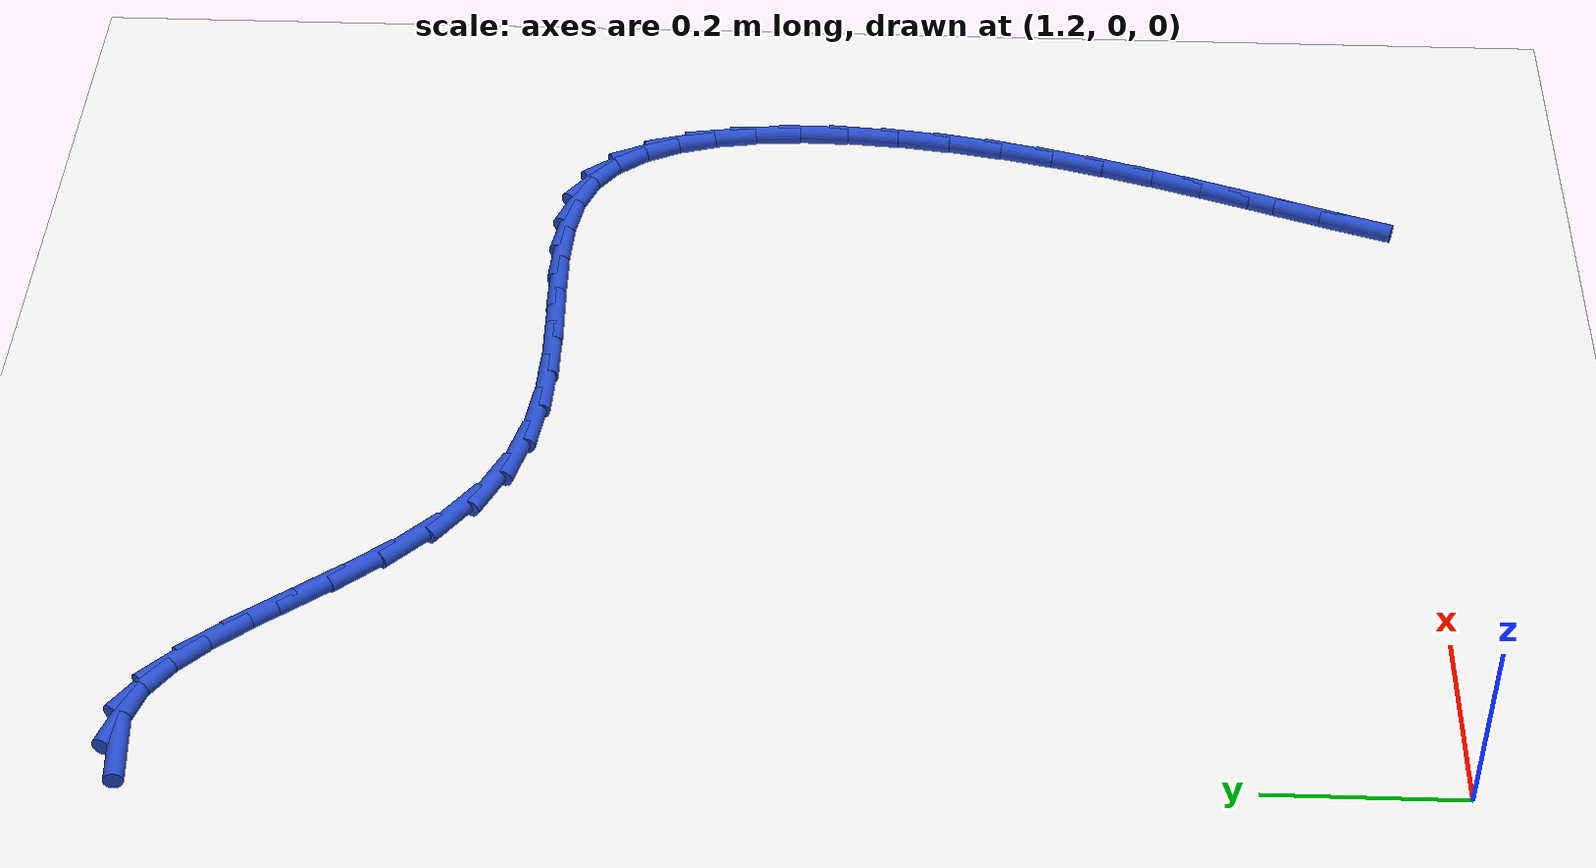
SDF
<sdf version="1.6">
 <world name="default">
  <model name="ground_plane">
   <static>1</static>
   <link name="link">
    <collision name="collision">
     <geometry><plane><normal>0 0 1</normal><size>100 100</size></plane></geometry>
     <surface><friction><ode><mu>100</mu><mu2>50</mu2></ode></friction></surface>
    </collision>
    <visual name="visual">
     <cast_shadows>0</cast_shadows>
     <geometry><plane><normal>0 0 1</normal><size>100 100</size></plane></geometry>
     <material>
      <script><uri>file://media/materials/scripts/gazebo.material</uri><name>Gazebo/WhiteGlow</name></script>
     </material>
    </visual>
   </link>
  </model>
  <model name="line">
   <link name="link_38">
    <pose>1.207631395489441 1.2788626270640902 0.01 0 1.57 0.08881564727308935</pose>
    <collision name="collision">
     <geometry><cylinder><radius>0.01</radius><length>0.08</length></cylinder></geometry>
    </collision>
    <visual name="visual">
     <material>
      <script><name>Gazebo/Blue</name><uri>file://media/materials/scripts/gazebo.material</uri></script>
     </material>
     <geometry><cylinder><radius>0.01</radius><length>0.08</length></cylinder></geometry>
    </visual>
   </link>
   <link name="link_39">
    <pose>1.2477009795915115 1.2824308202798063 0.01 0 1.57 -0.31008215336885275</pose>
    <collision name="collision">
     <geometry><cylinder><radius>0.01</radius><length>0.08</length></cylinder></geometry>
    </collision>
    <visual name="visual">
     <material>
      <script><name>Gazebo/Blue</name><uri>file://media/materials/scripts/gazebo.material</uri></script>
     </material>
     <geometry><cylinder><radius>0.01</radius><length>0.08</length></cylinder></geometry>
    </visual>
   </link>
   <link name="link_40">
    <pose>1.285117404471107 1.2704419208641466 0.01 0 1.57 -0.6065291499646555</pose>
    <collision name="collision">
     <geometry><cylinder><radius>0.01</radius><length>0.08</length></cylinder></geometry>
    </collision>
    <visual name="visual">
     <material>
      <script><name>Gazebo/Blue</name><uri>file://media/materials/scripts/gazebo.material</uri></script>
     </material>
     <geometry><cylinder><radius>0.01</radius><length>0.08</length></cylinder></geometry>
    </visual>
   </link>
   <link name="link_41">
    <pose>1.3206453921466081 1.2457938455416242 0.01 0 1.57 -0.785439815209314</pose>
    <collision name="collision">
     <geometry><cylinder><radius>0.01</radius><length>0.08</length></cylinder></geometry>
    </collision>
    <visual name="visual">
     <material>
      <script><name>Gazebo/Blue</name><uri>file://media/materials/scripts/gazebo.material</uri></script>
     </material>
     <geometry><cylinder><radius>0.01</radius><length>0.08</length></cylinder></geometry>
    </visual>
   </link>
   <link name="link_42">
    <pose>1.3550499340037434 1.2113864375420977 0.01 0 1.57 -0.880983348141115</pose>
    <collision name="collision">
     <geometry><cylinder><radius>0.01</radius><length>0.08</length></cylinder></geometry>
    </collision>
    <visual name="visual">
     <material>
      <script><name>Gazebo/Blue</name><uri>file://media/materials/scripts/gazebo.material</uri></script>
     </material>
     <geometry><cylinder><radius>0.01</radius><length>0.08</length></cylinder></geometry>
    </visual>
   </link>
   <link name="link_43">
    <pose>1.3890960214282426 1.170119540095424 0.01 0 1.57 -0.9197992767301317</pose>
    <collision name="collision">
     <geometry><cylinder><radius>0.01</radius><length>0.08</length></cylinder></geometry>
    </collision>
    <visual name="visual">
     <material>
      <script><name>Gazebo/Blue</name><uri>file://media/materials/scripts/gazebo.material</uri></script>
     </material>
     <geometry><cylinder><radius>0.01</radius><length>0.08</length></cylinder></geometry>
    </visual>
   </link>
   <link name="link_44">
    <pose>1.423548645805835 1.1248929964314616 0.01 0 1.57 -0.9148391888629962</pose>
    <collision name="collision">
     <geometry><cylinder><radius>0.01</radius><length>0.08</length></cylinder></geometry>
    </collision>
    <visual name="visual">
     <material>
      <script><name>Gazebo/Blue</name><uri>file://media/materials/scripts/gazebo.material</uri></script>
     </material>
     <geometry><cylinder><radius>0.01</radius><length>0.08</length></cylinder></geometry>
    </visual>
   </link>
   <link name="link_45">
    <pose>1.4591727985222502 1.0786066497800673 0.01 0 1.57 -0.8691656797073278</pose>
    <collision name="collision">
     <geometry><cylinder><radius>0.01</radius><length>0.08</length></cylinder></geometry>
    </collision>
    <visual name="visual">
     <material>
      <script><name>Gazebo/Blue</name><uri>file://media/materials/scripts/gazebo.material</uri></script>
     </material>
     <geometry><cylinder><radius>0.01</radius><length>0.08</length></cylinder></geometry>
    </visual>
   </link>
   <link name="link_46">
    <pose>1.4967334709632174 1.0341603433711002 0.01 0 1.57 -0.7784485403927817</pose>
    <collision name="collision">
     <geometry><cylinder><radius>0.01</radius><length>0.08</length></cylinder></geometry>
    </collision>
    <visual name="visual">
     <material>
      <script><name>Gazebo/Blue</name><uri>file://media/materials/scripts/gazebo.material</uri></script>
     </material>
     <geometry><cylinder><radius>0.01</radius><length>0.08</length></cylinder></geometry>
    </visual>
   </link>
   <link name="link_47">
    <pose>1.5369956545144663 0.994453920434418 0.01 0 1.57 -0.6327338617281203</pose>
    <collision name="collision">
     <geometry><cylinder><radius>0.01</radius><length>0.08</length></cylinder></geometry>
    </collision>
    <visual name="visual">
     <material>
      <script><name>Gazebo/Blue</name><uri>file://media/materials/scripts/gazebo.material</uri></script>
     </material>
     <geometry><cylinder><radius>0.01</radius><length>0.08</length></cylinder></geometry>
    </visual>
   </link>
   <link name="link_48">
    <pose>1.5807243405617257 0.9623872241998779 0.01 0 1.57 -0.4365214389359449</pose>
    <collision name="collision">
     <geometry><cylinder><radius>0.01</radius><length>0.08</length></cylinder></geometry>
    </collision>
    <visual name="visual">
     <material>
      <script><name>Gazebo/Blue</name><uri>file://media/materials/scripts/gazebo.material</uri></script>
     </material>
     <geometry><cylinder><radius>0.01</radius><length>0.08</length></cylinder></geometry>
    </visual>
   </link>
   <link name="link_49">
    <pose>1.6284111466724007 0.9401395204610673 0.01 0 1.57 -0.25900743046637276</pose>
    <collision name="collision">
     <geometry><cylinder><radius>0.01</radius><length>0.08</length></cylinder></geometry>
    </collision>
    <visual name="visual">
     <material>
      <script><name>Gazebo/Blue</name><uri>file://media/materials/scripts/gazebo.material</uri></script>
     </material>
     <geometry><cylinder><radius>0.01</radius><length>0.08</length></cylinder></geometry>
    </visual>
   </link>
   <link name="link_50">
    <pose>1.679318868088891 0.9266510609537888 0.01 0 1.57 -0.12561458461229144</pose>
    <collision name="collision">
     <geometry><cylinder><radius>0.01</radius><length>0.08</length></cylinder></geometry>
    </collision>
    <visual name="visual">
     <material>
      <script><name>Gazebo/Blue</name><uri>file://media/materials/scripts/gazebo.material</uri></script>
     </material>
     <geometry><cylinder><radius>0.01</radius><length>0.08</length></cylinder></geometry>
    </visual>
   </link>
   <link name="link_51">
    <pose>1.732365177932654 0.919952400886823 0.01 0 1.57 -0.0347044411926686</pose>
    <collision name="collision">
     <geometry><cylinder><radius>0.01</radius><length>0.08</length></cylinder></geometry>
    </collision>
    <visual name="visual">
     <material>
      <script><name>Gazebo/Blue</name><uri>file://media/materials/scripts/gazebo.material</uri></script>
     </material>
     <geometry><cylinder><radius>0.01</radius><length>0.08</length></cylinder></geometry>
    </visual>
   </link>
   <link name="link_52">
    <pose>1.7864677312597443 0.9180740478509248 0.01 0 1.57 0.017981149726221397</pose>
    <collision name="collision">
     <geometry><cylinder><radius>0.01</radius><length>0.08</length></cylinder></geometry>
    </collision>
    <visual name="visual">
     <material>
      <script><name>Gazebo/Blue</name><uri>file://media/materials/scripts/gazebo.material</uri></script>
     </material>
     <geometry><cylinder><radius>0.01</radius><length>0.08</length></cylinder></geometry>
    </visual>
   </link>
   <link name="link_53">
    <pose>1.8405441831262175 0.9190465094368503 0.01 0 1.57 0.03498390122692101</pose>
    <collision name="collision">
     <geometry><cylinder><radius>0.01</radius><length>0.08</length></cylinder></geometry>
    </collision>
    <visual name="visual">
     <material>
      <script><name>Gazebo/Blue</name><uri>file://media/materials/scripts/gazebo.material</uri></script>
     </material>
     <geometry><cylinder><radius>0.01</radius><length>0.08</length></cylinder></geometry>
    </visual>
   </link>
   <link name="link_54">
    <pose>1.893512188588129 0.920900293235355 0.01 0 1.57 0.015076754488411427</pose>
    <collision name="collision">
     <geometry><cylinder><radius>0.01</radius><length>0.08</length></cylinder></geometry>
    </collision>
    <visual name="visual">
     <material>
      <script><name>Gazebo/Blue</name><uri>file://media/materials/scripts/gazebo.material</uri></script>
     </material>
     <geometry><cylinder><radius>0.01</radius><length>0.08</length></cylinder></geometry>
    </visual>
   </link>
   <link name="link_55">
    <pose>1.9442894027015325 0.9216659068371938 0.01 0 1.57 -0.04821213139926054</pose>
    <collision name="collision">
     <geometry><cylinder><radius>0.01</radius><length>0.08</length></cylinder></geometry>
    </collision>
    <visual name="visual">
     <material>
      <script><name>Gazebo/Blue</name><uri>file://media/materials/scripts/gazebo.material</uri></script>
     </material>
     <geometry><cylinder><radius>0.01</radius><length>0.08</length></cylinder></geometry>
    </visual>
   </link>
   <link name="link_56">
    <pose>1.9917934805224833 0.9193738578331223 0.01 0 1.57 -0.16802844585005158</pose>
    <collision name="collision">
     <geometry><cylinder><radius>0.01</radius><length>0.08</length></cylinder></geometry>
    </collision>
    <visual name="visual">
     <material>
      <script><name>Gazebo/Blue</name><uri>file://media/materials/scripts/gazebo.material</uri></script>
     </material>
     <geometry><cylinder><radius>0.01</radius><length>0.08</length></cylinder></geometry>
    </visual>
   </link>
   <link name="link_57">
    <pose>2.0349420771070372 0.9120546538138964 0.01 0 1.57 -0.36281697408463104</pose>
    <collision name="collision">
     <geometry><cylinder><radius>0.01</radius><length>0.08</length></cylinder></geometry>
    </collision>
    <visual name="visual">
     <material>
      <script><name>Gazebo/Blue</name><uri>file://media/materials/scripts/gazebo.material</uri></script>
     </material>
     <geometry><cylinder><radius>0.01</radius><length>0.08</length></cylinder></geometry>
    </visual>
   </link>
   <link name="link_58">
    <pose>2.07265284751125 0.8977388023702713 0.01 0 1.57 -0.6368235792398497</pose>
    <collision name="collision">
     <geometry><cylinder><radius>0.01</radius><length>0.08</length></cylinder></geometry>
    </collision>
    <visual name="visual">
     <material>
      <script><name>Gazebo/Blue</name><uri>file://media/materials/scripts/gazebo.material</uri></script>
     </material>
     <geometry><cylinder><radius>0.01</radius><length>0.08</length></cylinder></geometry>
    </visual>
   </link>
   <link name="link_59">
    <pose>2.1039195191354865 0.8746134030038326 0.01 0 1.57 -0.9121560732776308</pose>
    <collision name="collision">
     <geometry><cylinder><radius>0.01</radius><length>0.08</length></cylinder></geometry>
    </collision>
    <visual name="visual">
     <material>
      <script><name>Gazebo/Blue</name><uri>file://media/materials/scripts/gazebo.material</uri></script>
     </material>
     <geometry><cylinder><radius>0.01</radius><length>0.08</length></cylinder></geometry>
    </visual>
   </link>
   <link name="link_60">
    <pose>2.12862360534909 0.8426930275064987 0.01 0 1.57 -1.1309427596672432</pose>
    <collision name="collision">
     <geometry><cylinder><radius>0.01</radius><length>0.08</length></cylinder></geometry>
    </collision>
    <visual name="visual">
     <material>
      <script><name>Gazebo/Blue</name><uri>file://media/materials/scripts/gazebo.material</uri></script>
     </material>
     <geometry><cylinder><radius>0.01</radius><length>0.08</length></cylinder></geometry>
    </visual>
   </link>
   <link name="link_61">
    <pose>2.1472210247209413 0.8031746380460922 0.01 0 1.57 -1.2956789865632539</pose>
    <collision name="collision">
     <geometry><cylinder><radius>0.01</radius><length>0.08</length></cylinder></geometry>
    </collision>
    <visual name="visual">
     <material>
      <script><name>Gazebo/Blue</name><uri>file://media/materials/scripts/gazebo.material</uri></script>
     </material>
     <geometry><cylinder><radius>0.01</radius><length>0.08</length></cylinder></geometry>
    </visual>
   </link>
   <link name="link_62">
    <pose>2.1601773431941163 0.7572750555285007 0.01 0 1.57 -1.4195861109109122</pose>
    <collision name="collision">
     <geometry><cylinder><radius>0.01</radius><length>0.08</length></cylinder></geometry>
    </collision>
    <visual name="visual">
     <material>
      <script><name>Gazebo/Blue</name><uri>file://media/materials/scripts/gazebo.material</uri></script>
     </material>
     <geometry><cylinder><radius>0.01</radius><length>0.08</length></cylinder></geometry>
    </visual>
   </link>
   <link name="link_63">
    <pose>2.1679581267116914 0.7062111008596129 0.01 0 1.57 -1.5150328854573967</pose>
    <collision name="collision">
     <geometry><cylinder><radius>0.01</radius><length>0.08</length></cylinder></geometry>
    </collision>
    <visual name="visual">
     <material>
      <script><name>Gazebo/Blue</name><uri>file://media/materials/scripts/gazebo.material</uri></script>
     </material>
     <geometry><cylinder><radius>0.01</radius><length>0.08</length></cylinder></geometry>
    </visual>
   </link>
   <link name="link_64">
    <pose>2.1710289412167407 0.6511995949453165 0.01 0 1.57 1.5504745124456742</pose>
    <collision name="collision">
     <geometry><cylinder><radius>0.01</radius><length>0.08</length></cylinder></geometry>
    </collision>
    <visual name="visual">
     <material>
      <script><name>Gazebo/Blue</name><uri>file://media/materials/scripts/gazebo.material</uri></script>
     </material>
     <geometry><cylinder><radius>0.01</radius><length>0.08</length></cylinder></geometry>
    </visual>
   </link>
   <link name="link_65">
    <pose>2.1698553526523425 0.5934573586915 0.01 0 1.57 1.4874135358619225</pose>
    <collision name="collision">
     <geometry><cylinder><radius>0.01</radius><length>0.08</length></cylinder></geometry>
    </collision>
    <visual name="visual">
     <material>
      <script><name>Gazebo/Blue</name><uri>file://media/materials/scripts/gazebo.material</uri></script>
     </material>
     <geometry><cylinder><radius>0.01</radius><length>0.08</length></cylinder></geometry>
    </visual>
   </link>
   <link name="link_66">
    <pose>2.1649029269615716 0.5342012130040507 0.01 0 1.57 1.4328823219346558</pose>
    <collision name="collision">
     <geometry><cylinder><radius>0.01</radius><length>0.08</length></cylinder></geometry>
    </collision>
    <visual name="visual">
     <material>
      <script><name>Gazebo/Blue</name><uri>file://media/materials/scripts/gazebo.material</uri></script>
     </material>
     <geometry><cylinder><radius>0.01</radius><length>0.08</length></cylinder></geometry>
    </visual>
   </link>
   <link name="link_67">
    <pose>2.156637230087503 0.47464797878885645 0.01 0 1.57 1.3835996386988472</pose>
    <collision name="collision">
     <geometry><cylinder><radius>0.01</radius><length>0.08</length></cylinder></geometry>
    </collision>
    <visual name="visual">
     <material>
      <script><name>Gazebo/Blue</name><uri>file://media/materials/scripts/gazebo.material</uri></script>
     </material>
     <geometry><cylinder><radius>0.01</radius><length>0.08</length></cylinder></geometry>
    </visual>
   </link>
   <link name="link_68">
    <pose>2.1455248128868356 0.41598075346847907 0.01 0 1.57 1.3396217985513634</pose>
    <collision name="collision">
     <geometry><cylinder><radius>0.01</radius><length>0.08</length></cylinder></geometry>
    </collision>
    <visual name="visual">
     <material>
      <script><name>Gazebo/Blue</name><uri>file://media/materials/scripts/gazebo.material</uri></script>
     </material>
     <geometry><cylinder><radius>0.01</radius><length>0.08</length></cylinder></geometry>
    </visual>
   </link>
   <link name="link_69">
    <pose>2.132051032192797 0.35873871704708843 0.01 0 1.57 1.30288761015329</pose>
    <collision name="collision">
     <geometry><cylinder><radius>0.01</radius><length>0.08</length></cylinder></geometry>
    </collision>
    <visual name="visual">
     <material>
      <script><name>Gazebo/Blue</name><uri>file://media/materials/scripts/gazebo.material</uri></script>
     </material>
     <geometry><cylinder><radius>0.01</radius><length>0.08</length></cylinder></geometry>
    </visual>
   </link>
   <link name="link_70">
    <pose>2.116718133414907 0.30288278397451507 0.01 0 1.57 1.2737911479376993</pose>
    <collision name="collision">
     <geometry><cylinder><radius>0.01</radius><length>0.08</length></cylinder></geometry>
    </collision>
    <visual name="visual">
     <material>
      <script><name>Gazebo/Blue</name><uri>file://media/materials/scripts/gazebo.material</uri></script>
     </material>
     <geometry><cylinder><radius>0.01</radius><length>0.08</length></cylinder></geometry>
    </visual>
   </link>
   <link name="link_71">
    <pose>2.1000289620055455 0.24835332320812104 0.01 0 1.57 1.2526256482752431</pose>
    <collision name="collision">
     <geometry><cylinder><radius>0.01</radius><length>0.08</length></cylinder></geometry>
    </collision>
    <visual name="visual">
     <material>
      <script><name>Gazebo/Blue</name><uri>file://media/materials/scripts/gazebo.material</uri></script>
     </material>
     <geometry><cylinder><radius>0.01</radius><length>0.08</length></cylinder></geometry>
    </visual>
   </link>
   <link name="link_72">
    <pose>2.082486363417089 0.19509070370526924 0.01 0 1.57 1.239715138979703</pose>
    <collision name="collision">
     <geometry><cylinder><radius>0.01</radius><length>0.08</length></cylinder></geometry>
    </collision>
    <visual name="visual">
     <material>
      <script><name>Gazebo/Blue</name><uri>file://media/materials/scripts/gazebo.material</uri></script>
     </material>
     <geometry><cylinder><radius>0.01</radius><length>0.08</length></cylinder></geometry>
    </visual>
   </link>
   <link name="link_73">
    <pose>2.0645931831019184 0.1430352944233217 0.01 0 1.57 1.2354665307370736</pose>
    <collision name="collision">
     <geometry><cylinder><radius>0.01</radius><length>0.08</length></cylinder></geometry>
    </collision>
    <visual name="visual">
     <material>
      <script><name>Gazebo/Blue</name><uri>file://media/materials/scripts/gazebo.material</uri></script>
     </material>
     <geometry><cylinder><radius>0.01</radius><length>0.08</length></cylinder></geometry>
    </visual>
   </link>
   <link name="link_74">
    <pose>2.0468522665124116 0.0921274643196405 0.01 0 1.57 1.240414467616866</pose>
    <collision name="collision">
     <geometry><cylinder><radius>0.01</radius><length>0.08</length></cylinder></geometry>
    </collision>
    <visual name="visual">
     <material>
      <script><name>Gazebo/Blue</name><uri>file://media/materials/scripts/gazebo.material</uri></script>
     </material>
     <geometry><cylinder><radius>0.01</radius><length>0.08</length></cylinder></geometry>
    </visual>
   </link>
   <link name="link_75">
    <pose>2.029766459100948 0.04230758235158808 0.01 0 1.57 1.2552563561996182</pose>
    <collision name="collision">
     <geometry><cylinder><radius>0.01</radius><length>0.08</length></cylinder></geometry>
    </collision>
    <visual name="visual">
     <material>
      <script><name>Gazebo/Blue</name><uri>file://media/materials/scripts/gazebo.material</uri></script>
     </material>
     <geometry><cylinder><radius>0.01</radius><length>0.08</length></cylinder></geometry>
    </visual>
   </link>
  </model>
 </world>
</sdf>
